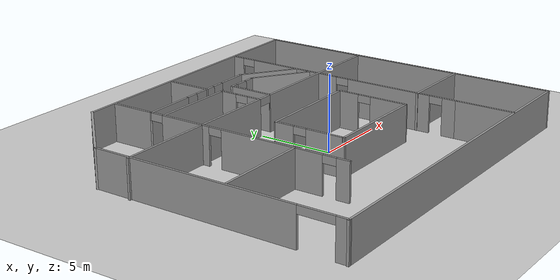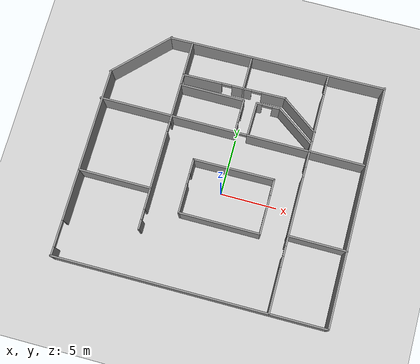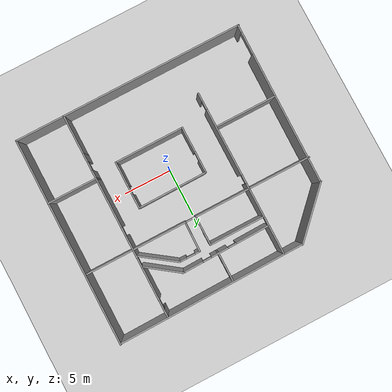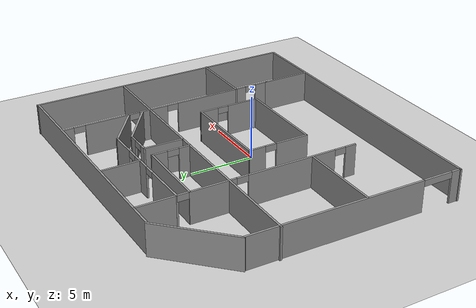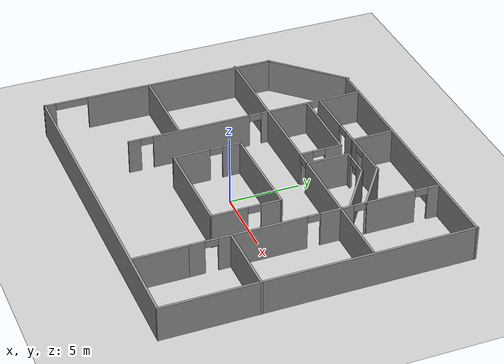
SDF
<sdf version="1.6">
 <world name="default">
  <light name="sun" type="directional">
   <pose>0 0 10 0 -0 0</pose>
   <diffuse>0.8 0.8 0.8 1</diffuse>
   <specular>0.1 0.1 0.1 1</specular>
   <attenuation>
    <range>1000</range>
    <constant>0.9</constant>
    <linear>0.01</linear>
    <quadratic>0.001</quadratic>
   </attenuation>
   <direction>-0.5 0.5 -1</direction>
  </light>
  <model name="ground_plane">
   <static>1</static>
   <link name="link">
    <collision name="collision">
     <geometry><plane><normal>0 0 1</normal><size>100 100</size></plane></geometry>
     <surface><friction><ode><mu>100</mu><mu2>50</mu2></ode></friction></surface>
    </collision>
    <visual name="visual">
     <cast_shadows>0</cast_shadows>
     <geometry><plane><normal>0 0 1</normal><size>100 100</size></plane></geometry>
     <material>
      <script><uri>file://media/materials/scripts/gazebo.material</uri><name>Gazebo/Grey</name></script>
     </material>
    </visual>
   </link>
  </model>
  <gravity>0 0 -9.8</gravity>
  <magnetic_field>6e-06 2.3e-05 -4.2e-05</magnetic_field>
  <atmosphere type="adiabatic"/>
  <physics name="default_physics" default="0" type="ode">
   <max_step_size>0.001</max_step_size>
   <real_time_factor>1</real_time_factor>
   <real_time_update_rate>1000</real_time_update_rate>
  </physics>
  <scene><ambient>0.4 0.4 0.4 1</ambient><background>0.7 0.7 0.7 1</background><shadows>1</shadows></scene>
  <spherical_coordinates>
   <surface_model>EARTH_WGS84</surface_model>
   <latitude_deg>0</latitude_deg>
   <longitude_deg>0</longitude_deg>
   <elevation>0</elevation>
   <heading_deg>0</heading_deg>
  </spherical_coordinates>
  <model name="Assignment3">
   <pose>-0.34526 1.5972 0 0 -0 0</pose>
   <link name="Wall_11">
    <collision name="Wall_11_Collision">
     <geometry><box><size>19.4777 0.15 2.5</size></box></geometry>
     <pose>0 0 1.25 0 -0 0</pose>
    </collision>
    <visual name="Wall_11_Visual">
     <pose>0 0 1.25 0 -0 0</pose>
     <geometry><box><size>19.4777 0.15 2.5</size></box></geometry>
     <material>
      <script><uri>file://media/materials/scripts/gazebo.material</uri><name>Gazebo/Grey</name></script>
      <ambient>1 1 1 1</ambient>
     </material>
    </visual>
    <pose>2.25623 10.5968 0 0 -0 0.011706</pose>
   </link>
   <link name="Wall_12">
    <collision name="Wall_12_Collision">
     <geometry><box><size>21.6226 0.15 2.5</size></box></geometry>
     <pose>0 0 1.25 0 -0 0</pose>
    </collision>
    <visual name="Wall_12_Visual">
     <pose>0 0 1.25 0 -0 0</pose>
     <geometry><box><size>21.6226 0.15 2.5</size></box></geometry>
     <material>
      <script><uri>file://media/materials/scripts/gazebo.material</uri><name>Gazebo/Grey</name></script>
      <ambient>1 1 1 1</ambient>
     </material>
    </visual>
    <pose>11.9299 0.02714 0 0 0 -1.56982</pose>
   </link>
   <link name="Wall_13">
    <collision name="Wall_13_Collision">
     <geometry><box><size>24.0001 0.15 2.5</size></box></geometry>
     <pose>0 0 1.25 0 -0 0</pose>
    </collision>
    <visual name="Wall_13_Visual">
     <pose>0 0 1.25 0 -0 0</pose>
     <geometry><box><size>24.0001 0.15 2.5</size></box></geometry>
     <material>
      <script><uri>file://media/materials/scripts/gazebo.material</uri><name>Gazebo/Grey</name></script>
      <ambient>1 1 1 1</ambient>
     </material>
    </visual>
    <pose>-0.038068 -10.7359 0 0 0 -3.13935</pose>
   </link>
   <link name="Wall_14">
    <pose>-11.8131 -2.32403 0 0 -0 1.55937</pose>
    <visual name="Wall_14_Visual_0">
     <pose>-8.09893 0 1.25 0 -0 0</pose>
     <geometry><box><size>0.830492 0.15 2.5</size></box></geometry>
     <material>
      <script><uri>file://media/materials/scripts/gazebo.material</uri><name>Gazebo/Grey</name></script>
      <ambient>1 1 1 1</ambient>
     </material>
    </visual>
    <collision name="Wall_14_Collision_0">
     <geometry><box><size>0.830492 0.15 2.5</size></box></geometry>
     <pose>-8.09893 0 1.25 0 -0 0</pose>
    </collision>
    <visual name="Wall_14_Visual_1">
     <pose>1.58779 0 1.25 0 -0 0</pose>
     <geometry><box><size>13.8528 0.15 2.5</size></box></geometry>
     <material>
      <script><uri>file://media/materials/scripts/gazebo.material</uri><name>Gazebo/Grey</name></script>
      <ambient>1 1 1 1</ambient>
     </material>
    </visual>
    <collision name="Wall_14_Collision_1">
     <geometry><box><size>13.8528 0.15 2.5</size></box></geometry>
     <pose>1.58779 0 1.25 0 -0 0</pose>
    </collision>
    <visual name="Wall_14_Visual_2">
     <pose>-6.51115 0 2.25 0 -0 0</pose>
     <geometry><box><size>2.34509 0.15 0.5</size></box></geometry>
     <material>
      <script><uri>file://media/materials/scripts/gazebo.material</uri><name>Gazebo/Grey</name></script>
      <ambient>1 1 1 1</ambient>
     </material>
    </visual>
    <collision name="Wall_14_Collision_2">
     <geometry><box><size>2.34509 0.15 0.5</size></box></geometry>
     <pose>-6.51115 0 2.25 0 -0 0</pose>
    </collision>
   </link>
   <link name="Wall_16">
    <collision name="Wall_16_Collision">
     <geometry><box><size>6.36265 0.15 2.5</size></box></geometry>
     <pose>0 0 1.25 0 -0 0</pose>
    </collision>
    <visual name="Wall_16_Visual">
     <pose>0 0 1.25 0 -0 0</pose>
     <geometry><box><size>6.36265 0.15 2.5</size></box></geometry>
     <material>
      <script><uri>file://media/materials/scripts/gazebo.material</uri><name>Gazebo/Grey</name></script>
      <ambient>1 1 1 1</ambient>
     </material>
    </visual>
    <pose>-9.58856 8.32589 0 0 0 -2.34944</pose>
   </link>
   <link name="Wall_19">
    <pose>6.88676 1.85825 0 0 -0 1.5708</pose>
    <visual name="Wall_19_Visual_0">
     <pose>-8.20766 0 1.25 0 -0 0</pose>
     <geometry><box><size>1.08469 0.15 2.5</size></box></geometry>
     <material>
      <script><uri>file://media/materials/scripts/gazebo.material</uri><name>Gazebo/Grey</name></script>
      <ambient>1 1 1 1</ambient>
     </material>
    </visual>
    <collision name="Wall_19_Collision_0">
     <geometry><box><size>1.08469 0.15 2.5</size></box></geometry>
     <pose>-8.20766 0 1.25 0 -0 0</pose>
    </collision>
    <visual name="Wall_19_Visual_1">
     <pose>-3.7109 0 1.25 0 -0 0</pose>
     <geometry><box><size>6.10883 0.15 2.5</size></box></geometry>
     <material>
      <script><uri>file://media/materials/scripts/gazebo.material</uri><name>Gazebo/Grey</name></script>
      <ambient>1 1 1 1</ambient>
     </material>
    </visual>
    <collision name="Wall_19_Collision_1">
     <geometry><box><size>6.10883 0.15 2.5</size></box></geometry>
     <pose>-3.7109 0 1.25 0 -0 0</pose>
    </collision>
    <visual name="Wall_19_Visual_2">
     <pose>1.42534 0 1.25 0 -0 0</pose>
     <geometry><box><size>2.36365 0.15 2.5</size></box></geometry>
     <material>
      <script><uri>file://media/materials/scripts/gazebo.material</uri><name>Gazebo/Grey</name></script>
      <ambient>1 1 1 1</ambient>
     </material>
    </visual>
    <collision name="Wall_19_Collision_2">
     <geometry><box><size>2.36365 0.15 2.5</size></box></geometry>
     <pose>1.42534 0 1.25 0 -0 0</pose>
    </collision>
    <visual name="Wall_19_Visual_3">
     <pose>5.25393 0 1.25 0 -0 0</pose>
     <geometry><box><size>3.49352 0.15 2.5</size></box></geometry>
     <material>
      <script><uri>file://media/materials/scripts/gazebo.material</uri><name>Gazebo/Grey</name></script>
      <ambient>1 1 1 1</ambient>
     </material>
    </visual>
    <collision name="Wall_19_Collision_3">
     <geometry><box><size>3.49352 0.15 2.5</size></box></geometry>
     <pose>5.25393 0 1.25 0 -0 0</pose>
    </collision>
    <visual name="Wall_19_Visual_4">
     <pose>8.32534 0 1.25 0 -0 0</pose>
     <geometry><box><size>0.849312 0.15 2.5</size></box></geometry>
     <material>
      <script><uri>file://media/materials/scripts/gazebo.material</uri><name>Gazebo/Grey</name></script>
      <ambient>1 1 1 1</ambient>
     </material>
    </visual>
    <collision name="Wall_19_Collision_4">
     <geometry><box><size>0.849312 0.15 2.5</size></box></geometry>
     <pose>8.32534 0 1.25 0 -0 0</pose>
    </collision>
    <visual name="Wall_19_Visual_5">
     <pose>-7.21531 0 2.25 0 -0 0</pose>
     <geometry><box><size>0.9 0.15 0.5</size></box></geometry>
     <material>
      <script><uri>file://media/materials/scripts/gazebo.material</uri><name>Gazebo/Grey</name></script>
      <ambient>1 1 1 1</ambient>
     </material>
    </visual>
    <collision name="Wall_19_Collision_5">
     <geometry><box><size>0.9 0.15 0.5</size></box></geometry>
     <pose>-7.21531 0 2.25 0 -0 0</pose>
    </collision>
    <visual name="Wall_19_Visual_6">
     <pose>-0.206482 0 2.25 0 -0 0</pose>
     <geometry><box><size>0.9 0.15 0.5</size></box></geometry>
     <material>
      <script><uri>file://media/materials/scripts/gazebo.material</uri><name>Gazebo/Grey</name></script>
      <ambient>1 1 1 1</ambient>
     </material>
    </visual>
    <collision name="Wall_19_Collision_6">
     <geometry><box><size>0.9 0.15 0.5</size></box></geometry>
     <pose>-0.206482 0 2.25 0 -0 0</pose>
    </collision>
    <visual name="Wall_19_Visual_7">
     <pose>3.05717 0 2.25 0 -0 0</pose>
     <geometry><box><size>0.9 0.15 0.5</size></box></geometry>
     <material>
      <script><uri>file://media/materials/scripts/gazebo.material</uri><name>Gazebo/Grey</name></script>
      <ambient>1 1 1 1</ambient>
     </material>
    </visual>
    <collision name="Wall_19_Collision_7">
     <geometry><box><size>0.9 0.15 0.5</size></box></geometry>
     <pose>3.05717 0 2.25 0 -0 0</pose>
    </collision>
    <visual name="Wall_19_Visual_8">
     <pose>7.45069 0 2.25 0 -0 0</pose>
     <geometry><box><size>0.9 0.15 0.5</size></box></geometry>
     <material>
      <script><uri>file://media/materials/scripts/gazebo.material</uri><name>Gazebo/Grey</name></script>
      <ambient>1 1 1 1</ambient>
     </material>
    </visual>
    <collision name="Wall_19_Collision_8">
     <geometry><box><size>0.9 0.15 0.5</size></box></geometry>
     <pose>7.45069 0 2.25 0 -0 0</pose>
    </collision>
   </link>
   <link name="Wall_21">
    <pose>-0.073749 3.56273 0 0 -0 0</pose>
    <visual name="Wall_21_Visual_0">
     <pose>-5.7666 0 1.25 0 -0 0</pose>
     <geometry><box><size>12.2168 0.15 2.5</size></box></geometry>
     <material>
      <script><uri>file://media/materials/scripts/gazebo.material</uri><name>Gazebo/Grey</name></script>
      <ambient>1 1 1 1</ambient>
     </material>
    </visual>
    <collision name="Wall_21_Collision_0">
     <geometry><box><size>12.2168 0.15 2.5</size></box></geometry>
     <pose>-5.7666 0 1.25 0 -0 0</pose>
    </collision>
    <visual name="Wall_21_Visual_1">
     <pose>6.61924 0 1.25 0 -0 0</pose>
     <geometry><box><size>10.5115 0.15 2.5</size></box></geometry>
     <material>
      <script><uri>file://media/materials/scripts/gazebo.material</uri><name>Gazebo/Grey</name></script>
      <ambient>1 1 1 1</ambient>
     </material>
    </visual>
    <collision name="Wall_21_Collision_1">
     <geometry><box><size>10.5115 0.15 2.5</size></box></geometry>
     <pose>6.61924 0 1.25 0 -0 0</pose>
    </collision>
    <visual name="Wall_21_Visual_2">
     <pose>0.85264 0 2.25 0 -0 0</pose>
     <geometry><box><size>1.02167 0.15 0.5</size></box></geometry>
     <material>
      <script><uri>file://media/materials/scripts/gazebo.material</uri><name>Gazebo/Grey</name></script>
      <ambient>1 1 1 1</ambient>
     </material>
    </visual>
    <collision name="Wall_21_Collision_2">
     <geometry><box><size>1.02167 0.15 0.5</size></box></geometry>
     <pose>0.85264 0 2.25 0 -0 0</pose>
    </collision>
   </link>
   <link name="Wall_23">
    <pose>-5.45345 1.86298 0 0 0 -1.5708</pose>
    <visual name="Wall_23_Visual_0">
     <pose>-7.12712 0 1.25 0 -0 0</pose>
     <geometry><box><size>2.99575 0.15 2.5</size></box></geometry>
     <material>
      <script><uri>file://media/materials/scripts/gazebo.material</uri><name>Gazebo/Grey</name></script>
      <ambient>1 1 1 1</ambient>
     </material>
    </visual>
    <collision name="Wall_23_Collision_0">
     <geometry><box><size>2.99575 0.15 2.5</size></box></geometry>
     <pose>-7.12712 0 1.25 0 -0 0</pose>
    </collision>
    <visual name="Wall_23_Visual_1">
     <pose>-2.93527 0 1.25 0 -0 0</pose>
     <geometry><box><size>3.58794 0.15 2.5</size></box></geometry>
     <material>
      <script><uri>file://media/materials/scripts/gazebo.material</uri><name>Gazebo/Grey</name></script>
      <ambient>1 1 1 1</ambient>
     </material>
    </visual>
    <collision name="Wall_23_Collision_1">
     <geometry><box><size>3.58794 0.15 2.5</size></box></geometry>
     <pose>-2.93527 0 1.25 0 -0 0</pose>
    </collision>
    <visual name="Wall_23_Visual_2">
     <pose>3.29669 0 1.25 0 -0 0</pose>
     <geometry><box><size>7.07599 0.15 2.5</size></box></geometry>
     <material>
      <script><uri>file://media/materials/scripts/gazebo.material</uri><name>Gazebo/Grey</name></script>
      <ambient>1 1 1 1</ambient>
     </material>
    </visual>
    <collision name="Wall_23_Collision_2">
     <geometry><box><size>7.07599 0.15 2.5</size></box></geometry>
     <pose>3.29669 0 1.25 0 -0 0</pose>
    </collision>
    <visual name="Wall_23_Visual_3">
     <pose>8.17984 0 1.25 0 -0 0</pose>
     <geometry><box><size>0.890317 0.15 2.5</size></box></geometry>
     <material>
      <script><uri>file://media/materials/scripts/gazebo.material</uri><name>Gazebo/Grey</name></script>
      <ambient>1 1 1 1</ambient>
     </material>
    </visual>
    <collision name="Wall_23_Collision_3">
     <geometry><box><size>0.890317 0.15 2.5</size></box></geometry>
     <pose>8.17984 0 1.25 0 -0 0</pose>
    </collision>
    <visual name="Wall_23_Visual_4">
     <pose>-5.17924 0 2.25 0 -0 0</pose>
     <geometry><box><size>0.9 0.15 0.5</size></box></geometry>
     <material>
      <script><uri>file://media/materials/scripts/gazebo.material</uri><name>Gazebo/Grey</name></script>
      <ambient>1 1 1 1</ambient>
     </material>
    </visual>
    <collision name="Wall_23_Collision_4">
     <geometry><box><size>0.9 0.15 0.5</size></box></geometry>
     <pose>-5.17924 0 2.25 0 -0 0</pose>
    </collision>
    <visual name="Wall_23_Visual_5">
     <pose>-0.691306 0 2.25 0 -0 0</pose>
     <geometry><box><size>0.9 0.15 0.5</size></box></geometry>
     <material>
      <script><uri>file://media/materials/scripts/gazebo.material</uri><name>Gazebo/Grey</name></script>
      <ambient>1 1 1 1</ambient>
     </material>
    </visual>
    <collision name="Wall_23_Collision_5">
     <geometry><box><size>0.9 0.15 0.5</size></box></geometry>
     <pose>-0.691306 0 2.25 0 -0 0</pose>
    </collision>
    <visual name="Wall_23_Visual_6">
     <pose>7.28468 0 2.25 0 -0 0</pose>
     <geometry><box><size>0.9 0.15 0.5</size></box></geometry>
     <material>
      <script><uri>file://media/materials/scripts/gazebo.material</uri><name>Gazebo/Grey</name></script>
      <ambient>1 1 1 1</ambient>
     </material>
    </visual>
    <collision name="Wall_23_Collision_6">
     <geometry><box><size>0.9 0.15 0.5</size></box></geometry>
     <pose>7.28468 0 2.25 0 -0 0</pose>
    </collision>
   </link>
   <link name="Wall_26">
    <collision name="Wall_26_Collision">
     <geometry><box><size>6.5 0.15 2.5</size></box></geometry>
     <pose>0 0 1.25 0 -0 0</pose>
    </collision>
    <visual name="Wall_26_Visual">
     <pose>0 0 1.25 0 -0 0</pose>
     <geometry><box><size>6.5 0.15 2.5</size></box></geometry>
     <material>
      <script><uri>file://media/materials/scripts/gazebo.material</uri><name>Gazebo/Grey</name></script>
      <ambient>1 1 1 1</ambient>
     </material>
    </visual>
    <pose>-8.64525 -3.07158 0 0 -0 0</pose>
   </link>
   <link name="Wall_28">
    <collision name="Wall_28_Collision">
     <geometry><box><size>7.272 0.15 2.5</size></box></geometry>
     <pose>0 0 1.25 0 -0 0</pose>
    </collision>
    <visual name="Wall_28_Visual">
     <pose>0 0 1.25 0 -0 0</pose>
     <geometry><box><size>7.272 0.15 2.5</size></box></geometry>
     <material>
      <script><uri>file://media/materials/scripts/gazebo.material</uri><name>Gazebo/Grey</name></script>
      <ambient>1 1 1 1</ambient>
     </material>
    </visual>
    <pose>0.996687 0.32583 0 0 -0 0.007512</pose>
   </link>
   <link name="Wall_30">
    <pose>-2.56431 -2.09592 0 0 0 -1.5708</pose>
    <visual name="Wall_30_Visual_0">
     <pose>-1.78227 0 1.25 0 -0 0</pose>
     <geometry><box><size>1.37546 0.15 2.5</size></box></geometry>
     <material>
      <script><uri>file://media/materials/scripts/gazebo.material</uri><name>Gazebo/Grey</name></script>
      <ambient>1 1 1 1</ambient>
     </material>
    </visual>
    <collision name="Wall_30_Collision_0">
     <geometry><box><size>1.37546 0.15 2.5</size></box></geometry>
     <pose>-1.78227 0 1.25 0 -0 0</pose>
    </collision>
    <visual name="Wall_30_Visual_1">
     <pose>1.13773 0 1.25 0 -0 0</pose>
     <geometry><box><size>2.66454 0.15 2.5</size></box></geometry>
     <material>
      <script><uri>file://media/materials/scripts/gazebo.material</uri><name>Gazebo/Grey</name></script>
      <ambient>1 1 1 1</ambient>
     </material>
    </visual>
    <collision name="Wall_30_Collision_1">
     <geometry><box><size>2.66454 0.15 2.5</size></box></geometry>
     <pose>1.13773 0 1.25 0 -0 0</pose>
    </collision>
    <visual name="Wall_30_Visual_2">
     <pose>-0.64454 0 2.25 0 -0 0</pose>
     <geometry><box><size>0.9 0.15 0.5</size></box></geometry>
     <material>
      <script><uri>file://media/materials/scripts/gazebo.material</uri><name>Gazebo/Grey</name></script>
      <ambient>1 1 1 1</ambient>
     </material>
    </visual>
    <collision name="Wall_30_Collision_2">
     <geometry><box><size>0.9 0.15 0.5</size></box></geometry>
     <pose>-0.64454 0 2.25 0 -0 0</pose>
    </collision>
   </link>
   <link name="Wall_32">
    <collision name="Wall_32_Collision">
     <geometry><box><size>7.25 0.15 2.5</size></box></geometry>
     <pose>0 0 1.25 0 -0 0</pose>
    </collision>
    <visual name="Wall_32_Visual">
     <pose>0 0 1.25 0 -0 0</pose>
     <geometry><box><size>7.25 0.15 2.5</size></box></geometry>
     <material>
      <script><uri>file://media/materials/scripts/gazebo.material</uri><name>Gazebo/Grey</name></script>
      <ambient>1 1 1 1</ambient>
     </material>
    </visual>
    <pose>0.985686 -4.49092 0 0 -0 0</pose>
   </link>
   <link name="Wall_33">
    <pose>4.54669 -2.06917 0 0 -0 1.56625</pose>
    <visual name="Wall_33_Visual_0">
     <pose>-1.19158 0 1.25 0 -0 0</pose>
     <geometry><box><size>2.6104 0.15 2.5</size></box></geometry>
     <material>
      <script><uri>file://media/materials/scripts/gazebo.material</uri><name>Gazebo/Grey</name></script>
      <ambient>1 1 1 1</ambient>
     </material>
    </visual>
    <collision name="Wall_33_Collision_0">
     <geometry><box><size>2.6104 0.15 2.5</size></box></geometry>
     <pose>-1.19158 0 1.25 0 -0 0</pose>
    </collision>
    <visual name="Wall_33_Visual_1">
     <pose>1.7552 0 1.25 0 -0 0</pose>
     <geometry><box><size>1.48315 0.15 2.5</size></box></geometry>
     <material>
      <script><uri>file://media/materials/scripts/gazebo.material</uri><name>Gazebo/Grey</name></script>
      <ambient>1 1 1 1</ambient>
     </material>
    </visual>
    <collision name="Wall_33_Collision_1">
     <geometry><box><size>1.48315 0.15 2.5</size></box></geometry>
     <pose>1.7552 0 1.25 0 -0 0</pose>
    </collision>
    <visual name="Wall_33_Visual_2">
     <pose>0.563624 0 2.25 0 -0 0</pose>
     <geometry><box><size>0.9 0.15 0.5</size></box></geometry>
     <material>
      <script><uri>file://media/materials/scripts/gazebo.material</uri><name>Gazebo/Grey</name></script>
      <ambient>1 1 1 1</ambient>
     </material>
    </visual>
    <collision name="Wall_33_Collision_2">
     <geometry><box><size>0.9 0.15 0.5</size></box></geometry>
     <pose>0.563624 0 2.25 0 -0 0</pose>
    </collision>
   </link>
   <link name="Wall_35">
    <pose>-0.860859 7.55636 0 0 -0 0.019147</pose>
    <visual name="Wall_35_Visual_0">
     <pose>-2.89928 0 1.25 0 -0 0</pose>
     <geometry><box><size>3.53829 0.15 2.5</size></box></geometry>
     <material>
      <script><uri>file://media/materials/scripts/gazebo.material</uri><name>Gazebo/Grey</name></script>
      <ambient>1 1 1 1</ambient>
     </material>
    </visual>
    <collision name="Wall_35_Collision_0">
     <geometry><box><size>3.53829 0.15 2.5</size></box></geometry>
     <pose>-2.89928 0 1.25 0 -0 0</pose>
    </collision>
    <visual name="Wall_35_Visual_1">
     <pose>0.659741 0 1.25 0 -0 0</pose>
     <geometry><box><size>1.77976 0.15 2.5</size></box></geometry>
     <material>
      <script><uri>file://media/materials/scripts/gazebo.material</uri><name>Gazebo/Grey</name></script>
      <ambient>1 1 1 1</ambient>
     </material>
    </visual>
    <collision name="Wall_35_Collision_1">
     <geometry><box><size>1.77976 0.15 2.5</size></box></geometry>
     <pose>0.659741 0 1.25 0 -0 0</pose>
    </collision>
    <visual name="Wall_35_Visual_2">
     <pose>3.55903 0 1.25 0 -0 0</pose>
     <geometry><box><size>2.21881 0.15 2.5</size></box></geometry>
     <material>
      <script><uri>file://media/materials/scripts/gazebo.material</uri><name>Gazebo/Grey</name></script>
      <ambient>1 1 1 1</ambient>
     </material>
    </visual>
    <collision name="Wall_35_Collision_2">
     <geometry><box><size>2.21881 0.15 2.5</size></box></geometry>
     <pose>3.55903 0 1.25 0 -0 0</pose>
    </collision>
    <visual name="Wall_35_Visual_3">
     <pose>-0.680137 0 2.25 0 -0 0</pose>
     <geometry><box><size>0.9 0.15 0.5</size></box></geometry>
     <material>
      <script><uri>file://media/materials/scripts/gazebo.material</uri><name>Gazebo/Grey</name></script>
      <ambient>1 1 1 1</ambient>
     </material>
    </visual>
    <collision name="Wall_35_Collision_3">
     <geometry><box><size>0.9 0.15 0.5</size></box></geometry>
     <pose>-0.680137 0 2.25 0 -0 0</pose>
    </collision>
    <visual name="Wall_35_Visual_4">
     <pose>1.99962 0 2.25 0 -0 0</pose>
     <geometry><box><size>0.9 0.15 0.5</size></box></geometry>
     <material>
      <script><uri>file://media/materials/scripts/gazebo.material</uri><name>Gazebo/Grey</name></script>
      <ambient>1 1 1 1</ambient>
     </material>
    </visual>
    <collision name="Wall_35_Collision_4">
     <geometry><box><size>0.9 0.15 0.5</size></box></geometry>
     <pose>1.99962 0 2.25 0 -0 0</pose>
    </collision>
   </link>
   <link name="Wall_37">
    <collision name="Wall_37_Collision">
     <geometry><box><size>4.11651 0.15 2.5</size></box></geometry>
     <pose>0 0 1.25 0 -0 0</pose>
    </collision>
    <visual name="Wall_37_Visual">
     <pose>0 0 1.25 0 -0 0</pose>
     <geometry><box><size>4.11651 0.15 2.5</size></box></geometry>
     <material>
      <script><uri>file://media/materials/scripts/gazebo.material</uri><name>Gazebo/Grey</name></script>
      <ambient>1 1 1 1</ambient>
     </material>
    </visual>
    <pose>5.28141 6.4768 0 0 0 -0.629432</pose>
   </link>
   <link name="Wall_39">
    <collision name="Wall_39_Collision">
     <geometry><box><size>5.78 0.15 2.5</size></box></geometry>
     <pose>0 0 1.25 0 -0 0</pose>
    </collision>
    <visual name="Wall_39_Visual">
     <pose>0 0 1.25 0 -0 0</pose>
     <geometry><box><size>5.78 0.15 2.5</size></box></geometry>
     <material>
      <script><uri>file://media/materials/scripts/gazebo.material</uri><name>Gazebo/Grey</name></script>
      <ambient>1 1 1 1</ambient>
     </material>
    </visual>
    <pose>-2.57383 6.52049 0 0 -0 0</pose>
   </link>
   <link name="Wall_42">
    <pose>0.241167 5.09549 0 0 0 -1.5708</pose>
    <visual name="Wall_42_Visual_0">
     <pose>-0.884962 0 1.25 0 -0 0</pose>
     <geometry><box><size>1.23008 0.15 2.5</size></box></geometry>
     <material>
      <script><uri>file://media/materials/scripts/gazebo.material</uri><name>Gazebo/Grey</name></script>
      <ambient>1 1 1 1</ambient>
     </material>
    </visual>
    <collision name="Wall_42_Collision_0">
     <geometry><box><size>1.23008 0.15 2.5</size></box></geometry>
     <pose>-0.884962 0 1.25 0 -0 0</pose>
    </collision>
    <visual name="Wall_42_Visual_1">
     <pose>1.06504 0 1.25 0 -0 0</pose>
     <geometry><box><size>0.869925 0.15 2.5</size></box></geometry>
     <material>
      <script><uri>file://media/materials/scripts/gazebo.material</uri><name>Gazebo/Grey</name></script>
      <ambient>1 1 1 1</ambient>
     </material>
    </visual>
    <collision name="Wall_42_Collision_1">
     <geometry><box><size>0.869925 0.15 2.5</size></box></geometry>
     <pose>1.06504 0 1.25 0 -0 0</pose>
    </collision>
    <visual name="Wall_42_Visual_2">
     <pose>0.180075 0 2.25 0 -0 0</pose>
     <geometry><box><size>0.9 0.15 0.5</size></box></geometry>
     <material>
      <script><uri>file://media/materials/scripts/gazebo.material</uri><name>Gazebo/Grey</name></script>
      <ambient>1 1 1 1</ambient>
     </material>
    </visual>
    <collision name="Wall_42_Collision_2">
     <geometry><box><size>0.9 0.15 0.5</size></box></geometry>
     <pose>0.180075 0 2.25 0 -0 0</pose>
    </collision>
   </link>
   <link name="Wall_44">
    <collision name="Wall_44_Collision">
     <geometry><box><size>4.13938 0.15 2.5</size></box></geometry>
     <pose>0 0 1.25 0 -0 0</pose>
    </collision>
    <visual name="Wall_44_Visual">
     <pose>0 0 1.25 0 -0 0</pose>
     <geometry><box><size>4.13938 0.15 2.5</size></box></geometry>
     <material>
      <script><uri>file://media/materials/scripts/gazebo.material</uri><name>Gazebo/Grey</name></script>
      <ambient>1 1 1 1</ambient>
     </material>
    </visual>
    <pose>5.13263 5.43214 0 0 -0 2.52173</pose>
   </link>
   <link name="Wall_45">
    <pose>2.45903 6.5909 0 0 -0 3.14159</pose>
    <visual name="Wall_45_Visual_0">
     <pose>-0.735922 0 1.25 0 -0 0</pose>
     <geometry><box><size>0.778156 0.15 2.5</size></box></geometry>
     <material>
      <script><uri>file://media/materials/scripts/gazebo.material</uri><name>Gazebo/Grey</name></script>
      <ambient>1 1 1 1</ambient>
     </material>
    </visual>
    <collision name="Wall_45_Collision_0">
     <geometry><box><size>0.778156 0.15 2.5</size></box></geometry>
     <pose>-0.735922 0 1.25 0 -0 0</pose>
    </collision>
    <visual name="Wall_45_Visual_1">
     <pose>0.839078 0 1.25 0 -0 0</pose>
     <geometry><box><size>0.571844 0.15 2.5</size></box></geometry>
     <material>
      <script><uri>file://media/materials/scripts/gazebo.material</uri><name>Gazebo/Grey</name></script>
      <ambient>1 1 1 1</ambient>
     </material>
    </visual>
    <collision name="Wall_45_Collision_1">
     <geometry><box><size>0.571844 0.15 2.5</size></box></geometry>
     <pose>0.839078 0 1.25 0 -0 0</pose>
    </collision>
    <visual name="Wall_45_Visual_2">
     <pose>0.103156 0 2.25 0 -0 0</pose>
     <geometry><box><size>0.9 0.15 0.5</size></box></geometry>
     <material>
      <script><uri>file://media/materials/scripts/gazebo.material</uri><name>Gazebo/Grey</name></script>
      <ambient>1 1 1 1</ambient>
     </material>
    </visual>
    <collision name="Wall_45_Collision_2">
     <geometry><box><size>0.9 0.15 0.5</size></box></geometry>
     <pose>0.103156 0 2.25 0 -0 0</pose>
    </collision>
   </link>
   <link name="Wall_46">
    <collision name="Wall_46_Collision">
     <geometry><box><size>3.054 0.15 2.5</size></box></geometry>
     <pose>0 0 1.25 0 -0 0</pose>
    </collision>
    <visual name="Wall_46_Visual">
     <pose>0 0 1.25 0 -0 0</pose>
     <geometry><box><size>3.054 0.15 2.5</size></box></geometry>
     <material>
      <script><uri>file://media/materials/scripts/gazebo.material</uri><name>Gazebo/Grey</name></script>
      <ambient>1 1 1 1</ambient>
     </material>
    </visual>
    <pose>1.38228 5.08565 0 0 0 -1.58922</pose>
   </link>
   <link name="Wall_48">
    <collision name="Wall_48_Collision">
     <geometry><box><size>4 0.15 2.5</size></box></geometry>
     <pose>0 0 1.25 0 -0 0</pose>
    </collision>
    <visual name="Wall_48_Visual">
     <pose>0 0 1.25 0 -0 0</pose>
     <geometry><box><size>4 0.15 2.5</size></box></geometry>
     <material>
      <script><uri>file://media/materials/scripts/gazebo.material</uri><name>Gazebo/Grey</name></script>
      <ambient>1 1 1 1</ambient>
     </material>
    </visual>
    <pose>6.88676 -8.74175 0 0 0 -1.5708</pose>
   </link>
   <link name="Wall_50">
    <collision name="Wall_50_Collision">
     <geometry><box><size>5.25 0.15 2.5</size></box></geometry>
     <pose>0 0 1.25 0 -0 0</pose>
    </collision>
    <visual name="Wall_50_Visual">
     <pose>0 0 1.25 0 -0 0</pose>
     <geometry><box><size>5.25 0.15 2.5</size></box></geometry>
     <material>
      <script><uri>file://media/materials/scripts/gazebo.material</uri><name>Gazebo/Grey</name></script>
      <ambient>1 1 1 1</ambient>
     </material>
    </visual>
    <pose>9.41324 -4.0195 0 0 -0 0</pose>
   </link>
   <link name="Wall_52">
    <collision name="Wall_52_Collision">
     <geometry><box><size>3 0.15 2.5</size></box></geometry>
     <pose>0 0 1.25 0 -0 0</pose>
    </collision>
    <visual name="Wall_52_Visual">
     <pose>0 0 1.25 0 -0 0</pose>
     <geometry><box><size>3 0.15 2.5</size></box></geometry>
     <material>
      <script><uri>file://media/materials/scripts/gazebo.material</uri><name>Gazebo/Grey</name></script>
      <ambient>1 1 1 1</ambient>
     </material>
    </visual>
    <pose>-0.048737 8.99225 0 0 -0 1.5708</pose>
   </link>
   <static>1</static>
  </model>
 </world>
</sdf>
